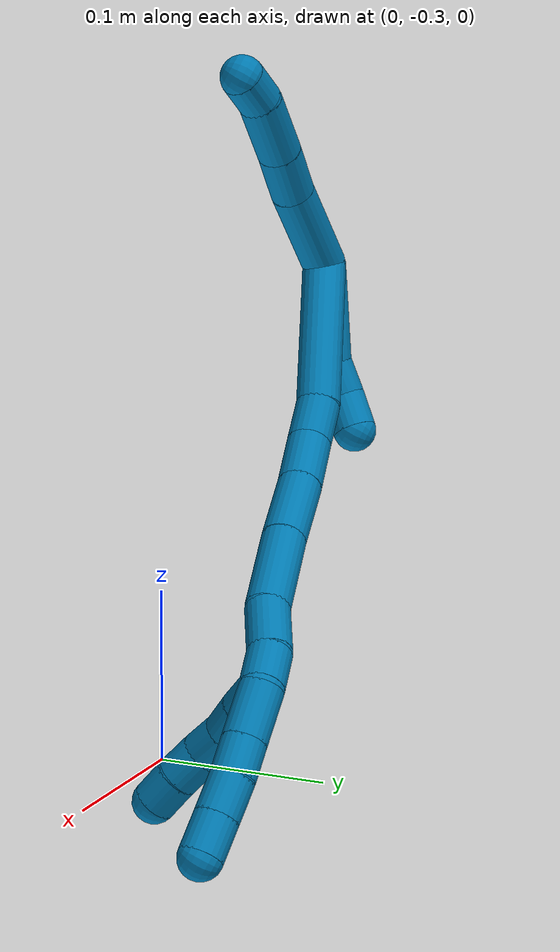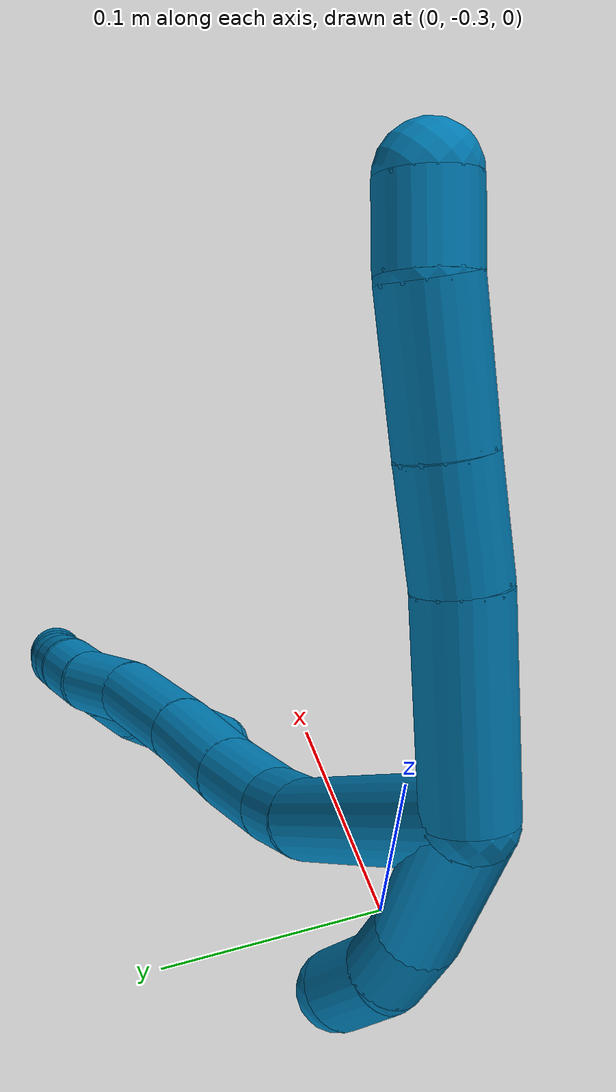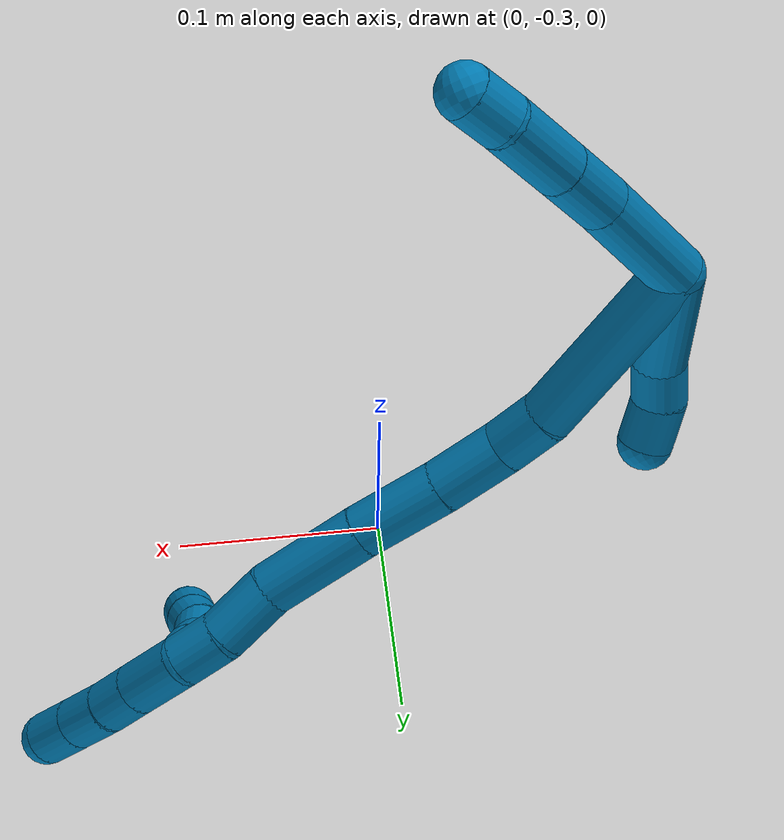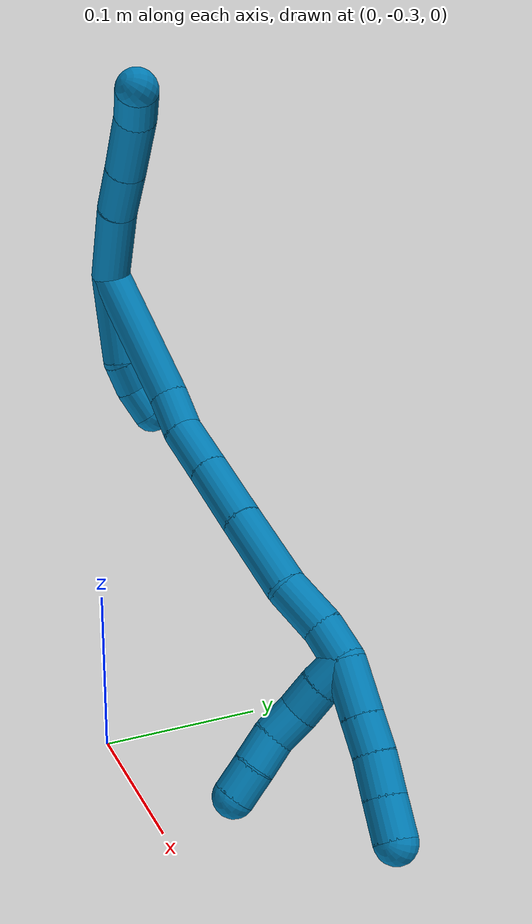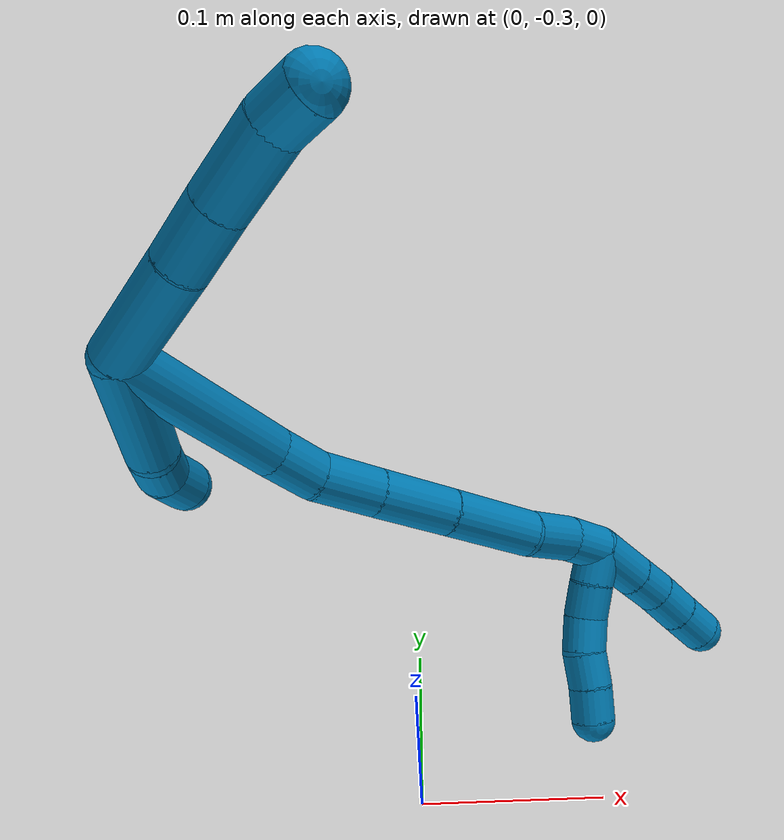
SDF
<sdf version="1.7">
 <world name="default">
  <model name="9">
   <static>0</static>
   <link name="9">
    <collision name="collision-cylinder-e_1_2_8">
     <pose>0.002048 0.022404 0.018475 -0.881219 0.070405 -0.033208</pose>
     <geometry><cylinder><radius>0.0125</radius><length>0.058222</length></cylinder></geometry>
     <surface>
      <friction><ode><mu>1.16</mu><mu2>1.16</mu2><slip1>0</slip1><slip2>0</slip2></ode></friction>
      <contact><ode><kp>1e+06</kp><kd>1</kd><max_vel>0</max_vel><min_depth>0.001</min_depth></ode></contact>
     </surface>
    </collision>
    <visual name="visual-cylinder-e_1_2_8">
     <pose>0.002048 0.022404 0.018475 -0.881219 0.070405 -0.033208</pose>
     <geometry><cylinder><radius>0.0125</radius><length>0.058222</length></cylinder></geometry>
     <material><ambient>0 0.490196 0.709804 1</ambient></material>
    </visual>
    <collision name="collision-cylinder-e_2_8_9">
     <pose>0.005191 0.05762 0.045811 -0.965727 0.070223 -0.036826</pose>
     <geometry><cylinder><radius>0.0125</radius><length>0.031234</length></cylinder></geometry>
     <surface>
      <friction><ode><mu>1.16</mu><mu2>1.16</mu2><slip1>0</slip1><slip2>0</slip2></ode></friction>
      <contact><ode><kp>1e+06</kp><kd>1</kd><max_vel>0</max_vel><min_depth>0.001</min_depth></ode></contact>
     </surface>
    </collision>
    <visual name="visual-cylinder-e_2_8_9">
     <pose>0.005191 0.05762 0.045811 -0.965727 0.070223 -0.036826</pose>
     <geometry><cylinder><radius>0.0125</radius><length>0.031234</length></cylinder></geometry>
     <material><ambient>0 0.490196 0.709804 1</ambient></material>
    </visual>
    <collision name="collision-cylinder-e_3_9_10">
     <pose>0.00801 0.086227 0.066182 -0.941037 0.087937 -0.044748</pose>
     <geometry><cylinder><radius>0.0125</radius><length>0.039236</length></cylinder></geometry>
     <surface>
      <friction><ode><mu>1.16</mu><mu2>1.16</mu2><slip1>0</slip1><slip2>0</slip2></ode></friction>
      <contact><ode><kp>1e+06</kp><kd>1</kd><max_vel>0</max_vel><min_depth>0.001</min_depth></ode></contact>
     </surface>
    </collision>
    <visual name="visual-cylinder-e_3_9_10">
     <pose>0.00801 0.086227 0.066182 -0.941037 0.087937 -0.044748</pose>
     <geometry><cylinder><radius>0.0125</radius><length>0.039236</length></cylinder></geometry>
     <material><ambient>0 0.490196 0.709804 1</ambient></material>
    </visual>
    <collision name="collision-cylinder-e_4_10_6">
     <pose>0.0121 0.109309 0.085092 -0.777797 0.224008 -0.092112</pose>
     <geometry><cylinder><radius>0.0125</radius><length>0.021308</length></cylinder></geometry>
     <surface>
      <friction><ode><mu>1.16</mu><mu2>1.16</mu2><slip1>0</slip1><slip2>0</slip2></ode></friction>
      <contact><ode><kp>1e+06</kp><kd>1</kd><max_vel>0</max_vel><min_depth>0.001</min_depth></ode></contact>
     </surface>
    </collision>
    <visual name="visual-cylinder-e_4_10_6">
     <pose>0.0121 0.109309 0.085092 -0.777797 0.224008 -0.092112</pose>
     <geometry><cylinder><radius>0.0125</radius><length>0.021308</length></cylinder></geometry>
     <material><ambient>0 0.490196 0.709804 1</ambient></material>
    </visual>
    <collision name="collision-cylinder-e_1_2_11">
     <pose>0.016372 -0.017982 -0.015057 2.2679 0.609427 1.18552</pose>
     <geometry><cylinder><radius>0.0125</radius><length>0.057205</length></cylinder></geometry>
     <surface>
      <friction><ode><mu>1.16</mu><mu2>1.16</mu2><slip1>0</slip1><slip2>0</slip2></ode></friction>
      <contact><ode><kp>1e+06</kp><kd>1</kd><max_vel>0</max_vel><min_depth>0.001</min_depth></ode></contact>
     </surface>
    </collision>
    <visual name="visual-cylinder-e_1_2_11">
     <pose>0.016372 -0.017982 -0.015057 2.2679 0.609427 1.18552</pose>
     <geometry><cylinder><radius>0.0125</radius><length>0.057205</length></cylinder></geometry>
     <material><ambient>0 0.490196 0.709804 1</ambient></material>
    </visual>
    <collision name="collision-cylinder-e_2_11_12">
     <pose>0.037862 -0.040716 -0.038189 2.60969 0.499973 1.50611</pose>
     <geometry><cylinder><radius>0.0125</radius><length>0.021353</length></cylinder></geometry>
     <surface>
      <friction><ode><mu>1.16</mu><mu2>1.16</mu2><slip1>0</slip1><slip2>0</slip2></ode></friction>
      <contact><ode><kp>1e+06</kp><kd>1</kd><max_vel>0</max_vel><min_depth>0.001</min_depth></ode></contact>
     </surface>
    </collision>
    <visual name="visual-cylinder-e_2_11_12">
     <pose>0.037862 -0.040716 -0.038189 2.60969 0.499973 1.50611</pose>
     <geometry><cylinder><radius>0.0125</radius><length>0.021353</length></cylinder></geometry>
     <material><ambient>0 0.490196 0.709804 1</ambient></material>
    </visual>
    <collision name="collision-cylinder-e_3_12_5">
     <pose>0.05049 -0.047542 -0.05363 2.8671 0.776009 2.48986</pose>
     <geometry><cylinder><radius>0.0125</radius><length>0.021442</length></cylinder></geometry>
     <surface>
      <friction><ode><mu>1.16</mu><mu2>1.16</mu2><slip1>0</slip1><slip2>0</slip2></ode></friction>
      <contact><ode><kp>1e+06</kp><kd>1</kd><max_vel>0</max_vel><min_depth>0.001</min_depth></ode></contact>
     </surface>
    </collision>
    <visual name="visual-cylinder-e_3_12_5">
     <pose>0.05049 -0.047542 -0.05363 2.8671 0.776009 2.48986</pose>
     <geometry><cylinder><radius>0.0125</radius><length>0.021442</length></cylinder></geometry>
     <material><ambient>0 0.490196 0.709804 1</ambient></material>
    </visual>
    <collision name="collision-cylinder-e_1_2_13">
     <pose>0.041548 -0.007958 -0.016378 2.68932 1.15774 2.46462</pose>
     <geometry><cylinder><radius>0.0125</radius><length>0.090726</length></cylinder></geometry>
     <surface>
      <friction><ode><mu>1.16</mu><mu2>1.16</mu2><slip1>0</slip1><slip2>0</slip2></ode></friction>
      <contact><ode><kp>1e+06</kp><kd>1</kd><max_vel>0</max_vel><min_depth>0.001</min_depth></ode></contact>
     </surface>
    </collision>
    <visual name="visual-cylinder-e_1_2_13">
     <pose>0.041548 -0.007958 -0.016378 2.68932 1.15774 2.46462</pose>
     <geometry><cylinder><radius>0.0125</radius><length>0.090726</length></cylinder></geometry>
     <material><ambient>0 0.490196 0.709804 1</ambient></material>
    </visual>
    <collision name="collision-cylinder-e_2_13_14">
     <pose>0.095714 -0.01778 -0.0352 2.48971 1.33186 2.32904</pose>
     <geometry><cylinder><radius>0.0125</radius><length>0.025974</length></cylinder></geometry>
     <surface>
      <friction><ode><mu>1.16</mu><mu2>1.16</mu2><slip1>0</slip1><slip2>0</slip2></ode></friction>
      <contact><ode><kp>1e+06</kp><kd>1</kd><max_vel>0</max_vel><min_depth>0.001</min_depth></ode></contact>
     </surface>
    </collision>
    <visual name="visual-cylinder-e_2_13_14">
     <pose>0.095714 -0.01778 -0.0352 2.48971 1.33186 2.32904</pose>
     <geometry><cylinder><radius>0.0125</radius><length>0.025974</length></cylinder></geometry>
     <material><ambient>0 0.490196 0.709804 1</ambient></material>
    </visual>
    <collision name="collision-cylinder-e_3_14_15">
     <pose>0.125 -0.01832 -0.040195 -2.66247 1.39999 -2.5771</pose>
     <geometry><cylinder><radius>0.0125</radius><length>0.033828</length></cylinder></geometry>
     <surface>
      <friction><ode><mu>1.16</mu><mu2>1.16</mu2><slip1>0</slip1><slip2>0</slip2></ode></friction>
      <contact><ode><kp>1e+06</kp><kd>1</kd><max_vel>0</max_vel><min_depth>0.001</min_depth></ode></contact>
     </surface>
    </collision>
    <visual name="visual-cylinder-e_3_14_15">
     <pose>0.125 -0.01832 -0.040195 -2.66247 1.39999 -2.5771</pose>
     <geometry><cylinder><radius>0.0125</radius><length>0.033828</length></cylinder></geometry>
     <material><ambient>0 0.490196 0.709804 1</ambient></material>
    </visual>
    <collision name="collision-cylinder-e_4_15_16">
     <pose>0.1628 -0.014981 -0.044869 -2.38254 1.43322 -2.2828</pose>
     <geometry><cylinder><radius>0.0125</radius><length>0.042668</length></cylinder></geometry>
     <surface>
      <friction><ode><mu>1.16</mu><mu2>1.16</mu2><slip1>0</slip1><slip2>0</slip2></ode></friction>
      <contact><ode><kp>1e+06</kp><kd>1</kd><max_vel>0</max_vel><min_depth>0.001</min_depth></ode></contact>
     </surface>
    </collision>
    <visual name="visual-cylinder-e_4_15_16">
     <pose>0.1628 -0.014981 -0.044869 -2.38254 1.43322 -2.2828</pose>
     <geometry><cylinder><radius>0.0125</radius><length>0.042668</length></cylinder></geometry>
     <material><ambient>0 0.490196 0.709804 1</ambient></material>
    </visual>
    <collision name="collision-cylinder-e_5_16_17">
     <pose>0.209323 -0.01078 -0.050647 -2.60232 1.40459 -2.51026</pose>
     <geometry><cylinder><radius>0.0125</radius><length>0.05149</length></cylinder></geometry>
     <surface>
      <friction><ode><mu>1.16</mu><mu2>1.16</mu2><slip1>0</slip1><slip2>0</slip2></ode></friction>
      <contact><ode><kp>1e+06</kp><kd>1</kd><max_vel>0</max_vel><min_depth>0.001</min_depth></ode></contact>
     </surface>
    </collision>
    <visual name="visual-cylinder-e_5_16_17">
     <pose>0.209323 -0.01078 -0.050647 -2.60232 1.40459 -2.51026</pose>
     <geometry><cylinder><radius>0.0125</radius><length>0.05149</length></cylinder></geometry>
     <material><ambient>0 0.490196 0.709804 1</ambient></material>
    </visual>
    <collision name="collision-cylinder-e_6_17_18">
     <pose>0.249317 -0.006257 -0.05957 -2.72437 1.19494 -2.53834</pose>
     <geometry><cylinder><radius>0.0125</radius><length>0.031399</length></cylinder></geometry>
     <surface>
      <friction><ode><mu>1.16</mu><mu2>1.16</mu2><slip1>0</slip1><slip2>0</slip2></ode></friction>
      <contact><ode><kp>1e+06</kp><kd>1</kd><max_vel>0</max_vel><min_depth>0.001</min_depth></ode></contact>
     </surface>
    </collision>
    <visual name="visual-cylinder-e_6_17_18">
     <pose>0.249317 -0.006257 -0.05957 -2.72437 1.19494 -2.53834</pose>
     <geometry><cylinder><radius>0.0125</radius><length>0.031399</length></cylinder></geometry>
     <material><ambient>0 0.490196 0.709804 1</ambient></material>
    </visual>
    <collision name="collision-cylinder-e_7_18_1">
     <pose>0.275725 -0.003225 -0.066613 -2.76744 1.41066 -2.70407</pose>
     <geometry><cylinder><radius>0.0125</radius><length>0.023914</length></cylinder></geometry>
     <surface>
      <friction><ode><mu>1.16</mu><mu2>1.16</mu2><slip1>0</slip1><slip2>0</slip2></ode></friction>
      <contact><ode><kp>1e+06</kp><kd>1</kd><max_vel>0</max_vel><min_depth>0.001</min_depth></ode></contact>
     </surface>
    </collision>
    <visual name="visual-cylinder-e_7_18_1">
     <pose>0.275725 -0.003225 -0.066613 -2.76744 1.41066 -2.70407</pose>
     <geometry><cylinder><radius>0.0125</radius><length>0.023914</length></cylinder></geometry>
     <material><ambient>0 0.490196 0.709804 1</ambient></material>
    </visual>
    <collision name="collision-cylinder-e_1_1_19">
     <pose>0.289439 -0.012284 -0.067297 1.45944 0.192173 0.171988</pose>
     <geometry><cylinder><radius>0.0125</radius><length>0.02</length></cylinder></geometry>
     <surface>
      <friction><ode><mu>1.16</mu><mu2>1.16</mu2><slip1>0</slip1><slip2>0</slip2></ode></friction>
      <contact><ode><kp>1e+06</kp><kd>1</kd><max_vel>0</max_vel><min_depth>0.001</min_depth></ode></contact>
     </surface>
    </collision>
    <visual name="visual-cylinder-e_1_1_19">
     <pose>0.289439 -0.012284 -0.067297 1.45944 0.192173 0.171988</pose>
     <geometry><cylinder><radius>0.0125</radius><length>0.02</length></cylinder></geometry>
     <material><ambient>0 0.490196 0.709804 1</ambient></material>
    </visual>
    <collision name="collision-cylinder-e_2_19_20">
     <pose>0.293984 -0.031665 -0.065588 1.50666 0.26673 0.250326</pose>
     <geometry><cylinder><radius>0.0125</radius><length>0.02</length></cylinder></geometry>
     <surface>
      <friction><ode><mu>1.16</mu><mu2>1.16</mu2><slip1>0</slip1><slip2>0</slip2></ode></friction>
      <contact><ode><kp>1e+06</kp><kd>1</kd><max_vel>0</max_vel><min_depth>0.001</min_depth></ode></contact>
     </surface>
    </collision>
    <visual name="visual-cylinder-e_2_19_20">
     <pose>0.293984 -0.031665 -0.065588 1.50666 0.26673 0.250326</pose>
     <geometry><cylinder><radius>0.0125</radius><length>0.02</length></cylinder></geometry>
     <material><ambient>0 0.490196 0.709804 1</ambient></material>
    </visual>
    <collision name="collision-cylinder-e_3_20_21">
     <pose>0.299439 -0.050526 -0.062366 1.29599 0.285712 0.216926</pose>
     <geometry><cylinder><radius>0.0125</radius><length>0.02</length></cylinder></geometry>
     <surface>
      <friction><ode><mu>1.16</mu><mu2>1.16</mu2><slip1>0</slip1><slip2>0</slip2></ode></friction>
      <contact><ode><kp>1e+06</kp><kd>1</kd><max_vel>0</max_vel><min_depth>0.001</min_depth></ode></contact>
     </surface>
    </collision>
    <visual name="visual-cylinder-e_3_20_21">
     <pose>0.299439 -0.050526 -0.062366 1.29599 0.285712 0.216926</pose>
     <geometry><cylinder><radius>0.0125</radius><length>0.02</length></cylinder></geometry>
     <material><ambient>0 0.490196 0.709804 1</ambient></material>
    </visual>
    <collision name="collision-cylinder-e_4_21_22">
     <pose>0.307298 -0.067968 -0.057072 1.25402 0.528365 0.38708</pose>
     <geometry><cylinder><radius>0.0125</radius><length>0.02</length></cylinder></geometry>
     <surface>
      <friction><ode><mu>1.16</mu><mu2>1.16</mu2><slip1>0</slip1><slip2>0</slip2></ode></friction>
      <contact><ode><kp>1e+06</kp><kd>1</kd><max_vel>0</max_vel><min_depth>0.001</min_depth></ode></contact>
     </surface>
    </collision>
    <visual name="visual-cylinder-e_4_21_22">
     <pose>0.307298 -0.067968 -0.057072 1.25402 0.528365 0.38708</pose>
     <geometry><cylinder><radius>0.0125</radius><length>0.02</length></cylinder></geometry>
     <material><ambient>0 0.490196 0.709804 1</ambient></material>
    </visual>
    <collision name="collision-cylinder-e_5_22_4">
     <pose>0.316863 -0.084864 -0.052374 1.34369 0.469347 0.375774</pose>
     <geometry><cylinder><radius>0.0125</radius><length>0.02</length></cylinder></geometry>
     <surface>
      <friction><ode><mu>1.16</mu><mu2>1.16</mu2><slip1>0</slip1><slip2>0</slip2></ode></friction>
      <contact><ode><kp>1e+06</kp><kd>1</kd><max_vel>0</max_vel><min_depth>0.001</min_depth></ode></contact>
     </surface>
    </collision>
    <visual name="visual-cylinder-e_5_22_4">
     <pose>0.316863 -0.084864 -0.052374 1.34369 0.469347 0.375774</pose>
     <geometry><cylinder><radius>0.0125</radius><length>0.02</length></cylinder></geometry>
     <material><ambient>0 0.490196 0.709804 1</ambient></material>
    </visual>
    <collision name="collision-cylinder-e_1_1_23">
     <pose>0.303058 -0.006091 -0.070355 2.07541 1.3145 1.83598</pose>
     <geometry><cylinder><radius>0.0125</radius><length>0.032108</length></cylinder></geometry>
     <surface>
      <friction><ode><mu>1.16</mu><mu2>1.16</mu2><slip1>0</slip1><slip2>0</slip2></ode></friction>
      <contact><ode><kp>1e+06</kp><kd>1</kd><max_vel>0</max_vel><min_depth>0.001</min_depth></ode></contact>
     </surface>
    </collision>
    <visual name="visual-cylinder-e_1_1_23">
     <pose>0.303058 -0.006091 -0.070355 2.07541 1.3145 1.83598</pose>
     <geometry><cylinder><radius>0.0125</radius><length>0.032108</length></cylinder></geometry>
     <material><ambient>0 0.490196 0.709804 1</ambient></material>
    </visual>
    <collision name="collision-cylinder-e_2_23_24">
     <pose>0.328883 -0.011944 -0.073705 2.11354 1.31654 1.88024</pose>
     <geometry><cylinder><radius>0.0125</radius><length>0.021275</length></cylinder></geometry>
     <surface>
      <friction><ode><mu>1.16</mu><mu2>1.16</mu2><slip1>0</slip1><slip2>0</slip2></ode></friction>
      <contact><ode><kp>1e+06</kp><kd>1</kd><max_vel>0</max_vel><min_depth>0.001</min_depth></ode></contact>
     </surface>
    </collision>
    <visual name="visual-cylinder-e_2_23_24">
     <pose>0.328883 -0.011944 -0.073705 2.11354 1.31654 1.88024</pose>
     <geometry><cylinder><radius>0.0125</radius><length>0.021275</length></cylinder></geometry>
     <material><ambient>0 0.490196 0.709804 1</ambient></material>
    </visual>
    <collision name="collision-cylinder-e_3_24_25">
     <pose>0.350429 -0.017445 -0.075895 1.81742 1.28471 1.5299</pose>
     <geometry><cylinder><radius>0.0125</radius><length>0.023454</length></cylinder></geometry>
     <surface>
      <friction><ode><mu>1.16</mu><mu2>1.16</mu2><slip1>0</slip1><slip2>0</slip2></ode></friction>
      <contact><ode><kp>1e+06</kp><kd>1</kd><max_vel>0</max_vel><min_depth>0.001</min_depth></ode></contact>
     </surface>
    </collision>
    <visual name="visual-cylinder-e_3_24_25">
     <pose>0.350429 -0.017445 -0.075895 1.81742 1.28471 1.5299</pose>
     <geometry><cylinder><radius>0.0125</radius><length>0.023454</length></cylinder></geometry>
     <material><ambient>0 0.490196 0.709804 1</ambient></material>
    </visual>
    <collision name="collision-cylinder-e_4_25_3">
     <pose>0.372828 -0.023697 -0.077463 1.81554 1.29656 1.54029</pose>
     <geometry><cylinder><radius>0.0125</radius><length>0.023163</length></cylinder></geometry>
     <surface>
      <friction><ode><mu>1.16</mu><mu2>1.16</mu2><slip1>0</slip1><slip2>0</slip2></ode></friction>
      <contact><ode><kp>1e+06</kp><kd>1</kd><max_vel>0</max_vel><min_depth>0.001</min_depth></ode></contact>
     </surface>
    </collision>
    <visual name="visual-cylinder-e_4_25_3">
     <pose>0.372828 -0.023697 -0.077463 1.81554 1.29656 1.54029</pose>
     <geometry><cylinder><radius>0.0125</radius><length>0.023163</length></cylinder></geometry>
     <material><ambient>0 0.490196 0.709804 1</ambient></material>
    </visual>
    <collision name="collision-sphere-3">
     <pose>0.383977 -0.02674 -0.078223 0 -0 0</pose>
     <geometry><sphere><radius>0.0125</radius></sphere></geometry>
     <surface>
      <friction><ode><mu>1.16</mu><mu2>1.16</mu2><slip1>0</slip1><slip2>0</slip2></ode></friction>
      <contact><ode><kp>1e+06</kp><kd>1</kd><max_vel>0</max_vel><min_depth>0.001</min_depth></ode></contact>
     </surface>
    </collision>
    <visual name="visual-sphere-3">
     <pose>0.383977 -0.02674 -0.078223 0 -0 0</pose>
     <geometry><sphere><radius>0.0125</radius></sphere></geometry>
     <material><ambient>0 0.490196 0.709804 1</ambient></material>
    </visual>
    <collision name="collision-sphere-25">
     <pose>0.36168 -0.020654 -0.076703 0 -0 0</pose>
     <geometry><sphere><radius>0.0125</radius></sphere></geometry>
     <surface>
      <friction><ode><mu>1.16</mu><mu2>1.16</mu2><slip1>0</slip1><slip2>0</slip2></ode></friction>
      <contact><ode><kp>1e+06</kp><kd>1</kd><max_vel>0</max_vel><min_depth>0.001</min_depth></ode></contact>
     </surface>
    </collision>
    <visual name="visual-sphere-25">
     <pose>0.36168 -0.020654 -0.076703 0 -0 0</pose>
     <geometry><sphere><radius>0.0125</radius></sphere></geometry>
     <material><ambient>0 0.490196 0.709804 1</ambient></material>
    </visual>
    <collision name="collision-sphere-24">
     <pose>0.339179 -0.014236 -0.075087 0 -0 0</pose>
     <geometry><sphere><radius>0.0125</radius></sphere></geometry>
     <surface>
      <friction><ode><mu>1.16</mu><mu2>1.16</mu2><slip1>0</slip1><slip2>0</slip2></ode></friction>
      <contact><ode><kp>1e+06</kp><kd>1</kd><max_vel>0</max_vel><min_depth>0.001</min_depth></ode></contact>
     </surface>
    </collision>
    <visual name="visual-sphere-24">
     <pose>0.339179 -0.014236 -0.075087 0 -0 0</pose>
     <geometry><sphere><radius>0.0125</radius></sphere></geometry>
     <material><ambient>0 0.490196 0.709804 1</ambient></material>
    </visual>
    <collision name="collision-sphere-23">
     <pose>0.318588 -0.009653 -0.072323 0 -0 0</pose>
     <geometry><sphere><radius>0.0125</radius></sphere></geometry>
     <surface>
      <friction><ode><mu>1.16</mu><mu2>1.16</mu2><slip1>0</slip1><slip2>0</slip2></ode></friction>
      <contact><ode><kp>1e+06</kp><kd>1</kd><max_vel>0</max_vel><min_depth>0.001</min_depth></ode></contact>
     </surface>
    </collision>
    <visual name="visual-sphere-23">
     <pose>0.318588 -0.009653 -0.072323 0 -0 0</pose>
     <geometry><sphere><radius>0.0125</radius></sphere></geometry>
     <material><ambient>0 0.490196 0.709804 1</ambient></material>
    </visual>
    <collision name="collision-sphere-4">
     <pose>0.321386 -0.093553 -0.050366 0 -0 0</pose>
     <geometry><sphere><radius>0.0125</radius></sphere></geometry>
     <surface>
      <friction><ode><mu>1.16</mu><mu2>1.16</mu2><slip1>0</slip1><slip2>0</slip2></ode></friction>
      <contact><ode><kp>1e+06</kp><kd>1</kd><max_vel>0</max_vel><min_depth>0.001</min_depth></ode></contact>
     </surface>
    </collision>
    <visual name="visual-sphere-4">
     <pose>0.321386 -0.093553 -0.050366 0 -0 0</pose>
     <geometry><sphere><radius>0.0125</radius></sphere></geometry>
     <material><ambient>0 0.490196 0.709804 1</ambient></material>
    </visual>
    <collision name="collision-sphere-22">
     <pose>0.312339 -0.076174 -0.054382 0 -0 0</pose>
     <geometry><sphere><radius>0.0125</radius></sphere></geometry>
     <surface>
      <friction><ode><mu>1.16</mu><mu2>1.16</mu2><slip1>0</slip1><slip2>0</slip2></ode></friction>
      <contact><ode><kp>1e+06</kp><kd>1</kd><max_vel>0</max_vel><min_depth>0.001</min_depth></ode></contact>
     </surface>
    </collision>
    <visual name="visual-sphere-22">
     <pose>0.312339 -0.076174 -0.054382 0 -0 0</pose>
     <geometry><sphere><radius>0.0125</radius></sphere></geometry>
     <material><ambient>0 0.490196 0.709804 1</ambient></material>
    </visual>
    <collision name="collision-sphere-21">
     <pose>0.302257 -0.059761 -0.059762 0 -0 0</pose>
     <geometry><sphere><radius>0.0125</radius></sphere></geometry>
     <surface>
      <friction><ode><mu>1.16</mu><mu2>1.16</mu2><slip1>0</slip1><slip2>0</slip2></ode></friction>
      <contact><ode><kp>1e+06</kp><kd>1</kd><max_vel>0</max_vel><min_depth>0.001</min_depth></ode></contact>
     </surface>
    </collision>
    <visual name="visual-sphere-21">
     <pose>0.302257 -0.059761 -0.059762 0 -0 0</pose>
     <geometry><sphere><radius>0.0125</radius></sphere></geometry>
     <material><ambient>0 0.490196 0.709804 1</ambient></material>
    </visual>
    <collision name="collision-sphere-20">
     <pose>0.29662 -0.041292 -0.06497 0 -0 0</pose>
     <geometry><sphere><radius>0.0125</radius></sphere></geometry>
     <surface>
      <friction><ode><mu>1.16</mu><mu2>1.16</mu2><slip1>0</slip1><slip2>0</slip2></ode></friction>
      <contact><ode><kp>1e+06</kp><kd>1</kd><max_vel>0</max_vel><min_depth>0.001</min_depth></ode></contact>
     </surface>
    </collision>
    <visual name="visual-sphere-20">
     <pose>0.29662 -0.041292 -0.06497 0 -0 0</pose>
     <geometry><sphere><radius>0.0125</radius></sphere></geometry>
     <material><ambient>0 0.490196 0.709804 1</ambient></material>
    </visual>
    <collision name="collision-sphere-11">
     <pose>0.032744 -0.035964 -0.030114 0 -0 0</pose>
     <geometry><sphere><radius>0.0125</radius></sphere></geometry>
     <surface>
      <friction><ode><mu>1.16</mu><mu2>1.16</mu2><slip1>0</slip1><slip2>0</slip2></ode></friction>
      <contact><ode><kp>1e+06</kp><kd>1</kd><max_vel>0</max_vel><min_depth>0.001</min_depth></ode></contact>
     </surface>
    </collision>
    <visual name="visual-sphere-11">
     <pose>0.032744 -0.035964 -0.030114 0 -0 0</pose>
     <geometry><sphere><radius>0.0125</radius></sphere></geometry>
     <material><ambient>0 0.490196 0.709804 1</ambient></material>
    </visual>
    <collision name="collision-sphere-6">
     <pose>0.014466 0.116599 0.092493 0 -0 0</pose>
     <geometry><sphere><radius>0.0125</radius></sphere></geometry>
     <surface>
      <friction><ode><mu>1.16</mu><mu2>1.16</mu2><slip1>0</slip1><slip2>0</slip2></ode></friction>
      <contact><ode><kp>1e+06</kp><kd>1</kd><max_vel>0</max_vel><min_depth>0.001</min_depth></ode></contact>
     </surface>
    </collision>
    <visual name="visual-sphere-6">
     <pose>0.014466 0.116599 0.092493 0 -0 0</pose>
     <geometry><sphere><radius>0.0125</radius></sphere></geometry>
     <material><ambient>0 0.490196 0.709804 1</ambient></material>
    </visual>
    <collision name="collision-sphere-10">
     <pose>0.009733 0.10202 0.077691 0 -0 0</pose>
     <geometry><sphere><radius>0.0125</radius></sphere></geometry>
     <surface>
      <friction><ode><mu>1.16</mu><mu2>1.16</mu2><slip1>0</slip1><slip2>0</slip2></ode></friction>
      <contact><ode><kp>1e+06</kp><kd>1</kd><max_vel>0</max_vel><min_depth>0.001</min_depth></ode></contact>
     </surface>
    </collision>
    <visual name="visual-sphere-10">
     <pose>0.009733 0.10202 0.077691 0 -0 0</pose>
     <geometry><sphere><radius>0.0125</radius></sphere></geometry>
     <material><ambient>0 0.490196 0.709804 1</ambient></material>
    </visual>
    <collision name="collision-sphere-9">
     <pose>0.006287 0.070433 0.054672 0 -0 0</pose>
     <geometry><sphere><radius>0.0125</radius></sphere></geometry>
     <surface>
      <friction><ode><mu>1.16</mu><mu2>1.16</mu2><slip1>0</slip1><slip2>0</slip2></ode></friction>
      <contact><ode><kp>1e+06</kp><kd>1</kd><max_vel>0</max_vel><min_depth>0.001</min_depth></ode></contact>
     </surface>
    </collision>
    <visual name="visual-sphere-9">
     <pose>0.006287 0.070433 0.054672 0 -0 0</pose>
     <geometry><sphere><radius>0.0125</radius></sphere></geometry>
     <material><ambient>0 0.490196 0.709804 1</ambient></material>
    </visual>
    <collision name="collision-sphere-2">
     <geometry><sphere><radius>0.0125</radius></sphere></geometry>
     <surface>
      <friction><ode><mu>1.16</mu><mu2>1.16</mu2><slip1>0</slip1><slip2>0</slip2></ode></friction>
      <contact><ode><kp>1e+06</kp><kd>1</kd><max_vel>0</max_vel><min_depth>0.001</min_depth></ode></contact>
     </surface>
    </collision>
    <visual name="visual-sphere-2">
     <geometry><sphere><radius>0.0125</radius></sphere></geometry>
     <material><ambient>0 0.490196 0.709804 1</ambient></material>
    </visual>
    <collision name="collision-sphere-19">
     <pose>0.291349 -0.022039 -0.066206 0 -0 0</pose>
     <geometry><sphere><radius>0.0125</radius></sphere></geometry>
     <surface>
      <friction><ode><mu>1.16</mu><mu2>1.16</mu2><slip1>0</slip1><slip2>0</slip2></ode></friction>
      <contact><ode><kp>1e+06</kp><kd>1</kd><max_vel>0</max_vel><min_depth>0.001</min_depth></ode></contact>
     </surface>
    </collision>
    <visual name="visual-sphere-19">
     <pose>0.291349 -0.022039 -0.066206 0 -0 0</pose>
     <geometry><sphere><radius>0.0125</radius></sphere></geometry>
     <material><ambient>0 0.490196 0.709804 1</ambient></material>
    </visual>
    <collision name="collision-sphere-8">
     <pose>0.004096 0.044808 0.036949 0 -0 0</pose>
     <geometry><sphere><radius>0.0125</radius></sphere></geometry>
     <surface>
      <friction><ode><mu>1.16</mu><mu2>1.16</mu2><slip1>0</slip1><slip2>0</slip2></ode></friction>
      <contact><ode><kp>1e+06</kp><kd>1</kd><max_vel>0</max_vel><min_depth>0.001</min_depth></ode></contact>
     </surface>
    </collision>
    <visual name="visual-sphere-8">
     <pose>0.004096 0.044808 0.036949 0 -0 0</pose>
     <geometry><sphere><radius>0.0125</radius></sphere></geometry>
     <material><ambient>0 0.490196 0.709804 1</ambient></material>
    </visual>
    <collision name="collision-sphere-12">
     <pose>0.042981 -0.045468 -0.046264 0 -0 0</pose>
     <geometry><sphere><radius>0.0125</radius></sphere></geometry>
     <surface>
      <friction><ode><mu>1.16</mu><mu2>1.16</mu2><slip1>0</slip1><slip2>0</slip2></ode></friction>
      <contact><ode><kp>1e+06</kp><kd>1</kd><max_vel>0</max_vel><min_depth>0.001</min_depth></ode></contact>
     </surface>
    </collision>
    <visual name="visual-sphere-12">
     <pose>0.042981 -0.045468 -0.046264 0 -0 0</pose>
     <geometry><sphere><radius>0.0125</radius></sphere></geometry>
     <material><ambient>0 0.490196 0.709804 1</ambient></material>
    </visual>
    <collision name="collision-sphere-5">
     <pose>0.057999 -0.049616 -0.060995 0 -0 0</pose>
     <geometry><sphere><radius>0.0125</radius></sphere></geometry>
     <surface>
      <friction><ode><mu>1.16</mu><mu2>1.16</mu2><slip1>0</slip1><slip2>0</slip2></ode></friction>
      <contact><ode><kp>1e+06</kp><kd>1</kd><max_vel>0</max_vel><min_depth>0.001</min_depth></ode></contact>
     </surface>
    </collision>
    <visual name="visual-sphere-5">
     <pose>0.057999 -0.049616 -0.060995 0 -0 0</pose>
     <geometry><sphere><radius>0.0125</radius></sphere></geometry>
     <material><ambient>0 0.490196 0.709804 1</ambient></material>
    </visual>
    <collision name="collision-sphere-13">
     <pose>0.083096 -0.015915 -0.032757 0 -0 0</pose>
     <geometry><sphere><radius>0.0125</radius></sphere></geometry>
     <surface>
      <friction><ode><mu>1.16</mu><mu2>1.16</mu2><slip1>0</slip1><slip2>0</slip2></ode></friction>
      <contact><ode><kp>1e+06</kp><kd>1</kd><max_vel>0</max_vel><min_depth>0.001</min_depth></ode></contact>
     </surface>
    </collision>
    <visual name="visual-sphere-13">
     <pose>0.083096 -0.015915 -0.032757 0 -0 0</pose>
     <geometry><sphere><radius>0.0125</radius></sphere></geometry>
     <material><ambient>0 0.490196 0.709804 1</ambient></material>
    </visual>
    <collision name="collision-sphere-14">
     <pose>0.108332 -0.019645 -0.037644 0 -0 0</pose>
     <geometry><sphere><radius>0.0125</radius></sphere></geometry>
     <surface>
      <friction><ode><mu>1.16</mu><mu2>1.16</mu2><slip1>0</slip1><slip2>0</slip2></ode></friction>
      <contact><ode><kp>1e+06</kp><kd>1</kd><max_vel>0</max_vel><min_depth>0.001</min_depth></ode></contact>
     </surface>
    </collision>
    <visual name="visual-sphere-14">
     <pose>0.108332 -0.019645 -0.037644 0 -0 0</pose>
     <geometry><sphere><radius>0.0125</radius></sphere></geometry>
     <material><ambient>0 0.490196 0.709804 1</ambient></material>
    </visual>
    <collision name="collision-sphere-15">
     <pose>0.141668 -0.016994 -0.042746 0 -0 0</pose>
     <geometry><sphere><radius>0.0125</radius></sphere></geometry>
     <surface>
      <friction><ode><mu>1.16</mu><mu2>1.16</mu2><slip1>0</slip1><slip2>0</slip2></ode></friction>
      <contact><ode><kp>1e+06</kp><kd>1</kd><max_vel>0</max_vel><min_depth>0.001</min_depth></ode></contact>
     </surface>
    </collision>
    <visual name="visual-sphere-15">
     <pose>0.141668 -0.016994 -0.042746 0 -0 0</pose>
     <geometry><sphere><radius>0.0125</radius></sphere></geometry>
     <material><ambient>0 0.490196 0.709804 1</ambient></material>
    </visual>
    <collision name="collision-sphere-16">
     <pose>0.183933 -0.012967 -0.046992 0 -0 0</pose>
     <geometry><sphere><radius>0.0125</radius></sphere></geometry>
     <surface>
      <friction><ode><mu>1.16</mu><mu2>1.16</mu2><slip1>0</slip1><slip2>0</slip2></ode></friction>
      <contact><ode><kp>1e+06</kp><kd>1</kd><max_vel>0</max_vel><min_depth>0.001</min_depth></ode></contact>
     </surface>
    </collision>
    <visual name="visual-sphere-16">
     <pose>0.183933 -0.012967 -0.046992 0 -0 0</pose>
     <geometry><sphere><radius>0.0125</radius></sphere></geometry>
     <material><ambient>0 0.490196 0.709804 1</ambient></material>
    </visual>
    <collision name="collision-sphere-17">
     <pose>0.234713 -0.008593 -0.054301 0 -0 0</pose>
     <geometry><sphere><radius>0.0125</radius></sphere></geometry>
     <surface>
      <friction><ode><mu>1.16</mu><mu2>1.16</mu2><slip1>0</slip1><slip2>0</slip2></ode></friction>
      <contact><ode><kp>1e+06</kp><kd>1</kd><max_vel>0</max_vel><min_depth>0.001</min_depth></ode></contact>
     </surface>
    </collision>
    <visual name="visual-sphere-17">
     <pose>0.234713 -0.008593 -0.054301 0 -0 0</pose>
     <geometry><sphere><radius>0.0125</radius></sphere></geometry>
     <material><ambient>0 0.490196 0.709804 1</ambient></material>
    </visual>
    <collision name="collision-sphere-18">
     <pose>0.263921 -0.003922 -0.064838 0 -0 0</pose>
     <geometry><sphere><radius>0.0125</radius></sphere></geometry>
     <surface>
      <friction><ode><mu>1.16</mu><mu2>1.16</mu2><slip1>0</slip1><slip2>0</slip2></ode></friction>
      <contact><ode><kp>1e+06</kp><kd>1</kd><max_vel>0</max_vel><min_depth>0.001</min_depth></ode></contact>
     </surface>
    </collision>
    <visual name="visual-sphere-18">
     <pose>0.263921 -0.003922 -0.064838 0 -0 0</pose>
     <geometry><sphere><radius>0.0125</radius></sphere></geometry>
     <material><ambient>0 0.490196 0.709804 1</ambient></material>
    </visual>
    <collision name="collision-sphere-1">
     <pose>0.287529 -0.002528 -0.068388 0 -0 0</pose>
     <geometry><sphere><radius>0.0125</radius></sphere></geometry>
     <surface>
      <friction><ode><mu>1.16</mu><mu2>1.16</mu2><slip1>0</slip1><slip2>0</slip2></ode></friction>
      <contact><ode><kp>1e+06</kp><kd>1</kd><max_vel>0</max_vel><min_depth>0.001</min_depth></ode></contact>
     </surface>
    </collision>
    <visual name="visual-sphere-1">
     <pose>0.287529 -0.002528 -0.068388 0 -0 0</pose>
     <geometry><sphere><radius>0.0125</radius></sphere></geometry>
     <material><ambient>0 0.490196 0.709804 1</ambient></material>
    </visual>
    <inertial>
     <pose>0.146713 -0.004968 -0.028202 0 -0 0</pose>
     <mass>0.75</mass>
     <inertia>
      <ixx>8.6e-05</ixx>
      <ixy>0</ixy>
      <ixz>0</ixz>
      <iyy>0.00016</iyy>
      <iyz>0</iyz>
      <izz>-0.000116</izz>
     </inertia>
    </inertial>
   </link>
   <pose>-0.116448 -0.251081 0.272632 0.98217 0.564049 0.020842</pose>
  </model>
 </world>
</sdf>
